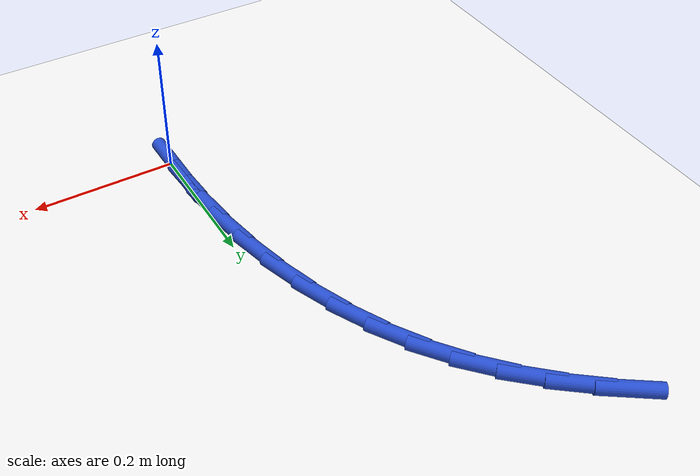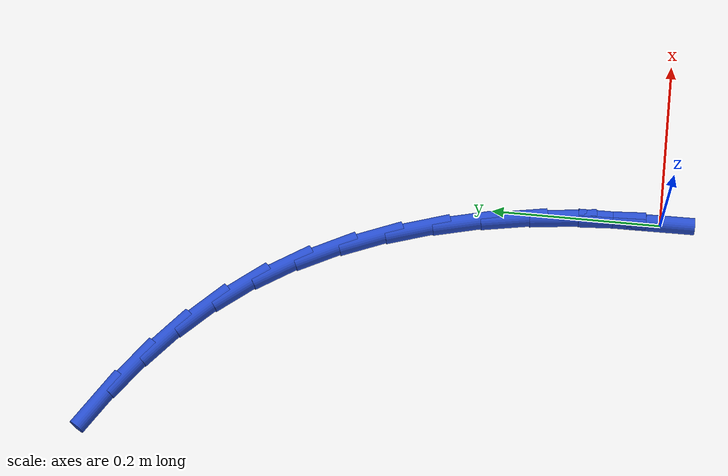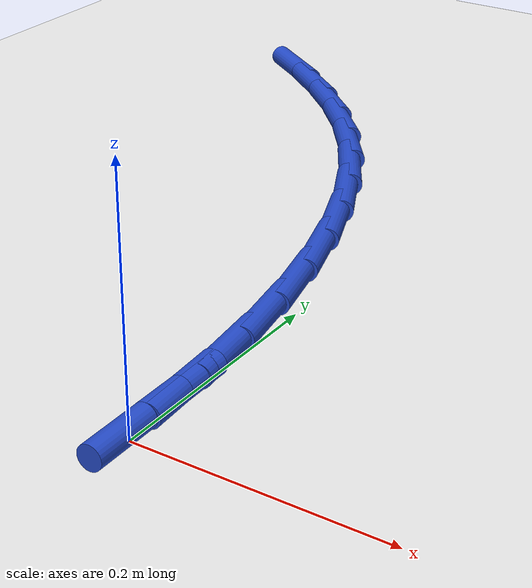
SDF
<sdf version="1.6">
 <world name="default">
  <model name="ground_plane">
   <static>1</static>
   <link name="link">
    <collision name="collision">
     <geometry><plane><normal>0 0 1</normal><size>100 100</size></plane></geometry>
     <surface><friction><ode><mu>100</mu><mu2>50</mu2></ode></friction></surface>
    </collision>
    <visual name="visual">
     <cast_shadows>0</cast_shadows>
     <geometry><plane><normal>0 0 1</normal><size>100 100</size></plane></geometry>
     <material>
      <script><uri>file://media/materials/scripts/gazebo.material</uri><name>Gazebo/WhiteGlow</name></script>
     </material>
    </visual>
   </link>
  </model>
  <model name="line">
   <link name="link_0">
    <pose>-1.1449174941446927e-16 1.249000902703301e-16 0.01 0 1.57 -1.5620902911225623</pose>
    <collision name="collision">
     <geometry><cylinder><radius>0.01</radius><length>0.08</length></cylinder></geometry>
    </collision>
    <visual name="visual">
     <material>
      <script><name>Gazebo/Blue</name><uri>file://media/materials/scripts/gazebo.material</uri></script>
     </material>
     <geometry><cylinder><radius>0.01</radius><length>0.08</length></cylinder></geometry>
    </visual>
   </link>
   <link name="link_1">
    <pose>-0.000503619840601612 0.057845744667998585 0.01 0 1.57 -1.5112052986682893</pose>
    <collision name="collision">
     <geometry><cylinder><radius>0.01</radius><length>0.08</length></cylinder></geometry>
    </collision>
    <visual name="visual">
     <material>
      <script><name>Gazebo/Blue</name><uri>file://media/materials/scripts/gazebo.material</uri></script>
     </material>
     <geometry><cylinder><radius>0.01</radius><length>0.08</length></cylinder></geometry>
    </visual>
   </link>
   <link name="link_2">
    <pose>-0.003962189445238282 0.11581545664779702 0.01 0 1.57 -1.457268982998738</pose>
    <collision name="collision">
     <geometry><cylinder><radius>0.01</radius><length>0.08</length></cylinder></geometry>
    </collision>
    <visual name="visual">
     <material>
      <script><name>Gazebo/Blue</name><uri>file://media/materials/scripts/gazebo.material</uri></script>
     </material>
     <geometry><cylinder><radius>0.01</radius><length>0.08</length></cylinder></geometry>
    </visual>
   </link>
   <link name="link_3">
    <pose>-0.01053325564551478 0.1734474895328082 0.01 0 1.57 -1.3993372580569177</pose>
    <collision name="collision">
     <geometry><cylinder><radius>0.01</radius><length>0.08</length></cylinder></geometry>
    </collision>
    <visual name="visual">
     <material>
      <script><name>Gazebo/Blue</name><uri>file://media/materials/scripts/gazebo.material</uri></script>
     </material>
     <geometry><cylinder><radius>0.01</radius><length>0.08</length></cylinder></geometry>
    </visual>
   </link>
   <link name="link_4">
    <pose>-0.020374365273035756 0.23028019691644463 0.01 0 1.57 -1.3364174624905354</pose>
    <collision name="collision">
     <geometry><cylinder><radius>0.01</radius><length>0.08</length></cylinder></geometry>
    </collision>
    <visual name="visual">
     <material>
      <script><name>Gazebo/Blue</name><uri>file://media/materials/scripts/gazebo.material</uri></script>
     </material>
     <geometry><cylinder><radius>0.01</radius><length>0.08</length></cylinder></geometry>
    </visual>
   </link>
   <link name="link_5">
    <pose>-0.03364306515940589 0.2858519323921193 0.01 0 1.57 -1.2674718500543405</pose>
    <collision name="collision">
     <geometry><cylinder><radius>0.01</radius><length>0.08</length></cylinder></geometry>
    </collision>
    <visual name="visual">
     <material>
      <script><name>Gazebo/Blue</name><uri>file://media/materials/scripts/gazebo.material</uri></script>
     </material>
     <geometry><cylinder><radius>0.01</radius><length>0.08</length></cylinder></geometry>
    </visual>
   </link>
   <link name="link_6">
    <pose>-0.05049690213622983 0.33970104955324476 0.01 0 1.57 -1.1914488150487443</pose>
    <collision name="collision">
     <geometry><cylinder><radius>0.01</radius><length>0.08</length></cylinder></geometry>
    </collision>
    <visual name="visual">
     <material>
      <script><name>Gazebo/Blue</name><uri>file://media/materials/scripts/gazebo.material</uri></script>
     </material>
     <geometry><cylinder><radius>0.01</radius><length>0.08</length></cylinder></geometry>
    </visual>
   </link>
   <link name="link_7">
    <pose>-0.07109342303511224 0.3913659019932338 0.01 0 1.57 -1.1073563162984545</pose>
    <collision name="collision">
     <geometry><cylinder><radius>0.01</radius><length>0.08</length></cylinder></geometry>
    </collision>
    <visual name="visual">
     <material>
      <script><name>Gazebo/Blue</name><uri>file://media/materials/scripts/gazebo.material</uri></script>
     </material>
     <geometry><cylinder><radius>0.01</radius><length>0.08</length></cylinder></geometry>
    </visual>
   </link>
   <link name="link_8">
    <pose>-0.09559017468765776 0.440384843305499 0.01 0 1.57 -1.0143941549607738</pose>
    <collision name="collision">
     <geometry><cylinder><radius>0.01</radius><length>0.08</length></cylinder></geometry>
    </collision>
    <visual name="visual">
     <material>
      <script><name>Gazebo/Blue</name><uri>file://media/materials/scripts/gazebo.material</uri></script>
     </material>
     <geometry><cylinder><radius>0.01</radius><length>0.08</length></cylinder></geometry>
    </visual>
   </link>
   <link name="link_9">
    <pose>-0.12414470392547106 0.486296227083453 0.01 0 1.57 -0.9131613648063072</pose>
    <collision name="collision">
     <geometry><cylinder><radius>0.01</radius><length>0.08</length></cylinder></geometry>
    </collision>
    <visual name="visual">
     <material>
      <script><name>Gazebo/Blue</name><uri>file://media/materials/scripts/gazebo.material</uri></script>
     </material>
     <geometry><cylinder><radius>0.01</radius><length>0.08</length></cylinder></geometry>
    </visual>
   </link>
   <link name="link_10">
    <pose>-0.15688177294271205 0.5286840629052747 0.01 0 1.57 -0.815202252392684</pose>
    <collision name="collision">
     <geometry><cylinder><radius>0.01</radius><length>0.08</length></cylinder></geometry>
    </collision>
    <visual name="visual">
     <material>
      <script><name>Gazebo/Blue</name><uri>file://media/materials/scripts/gazebo.material</uri></script>
     </material>
     <geometry><cylinder><radius>0.01</radius><length>0.08</length></cylinder></geometry>
    </visual>
   </link>
   <link name="link_11">
    <pose>-0.1935705091809635 0.5676276183758078 0.01 0 1.57 -0.728807495843736</pose>
    <collision name="collision">
     <geometry><cylinder><radius>0.01</radius><length>0.08</length></cylinder></geometry>
    </collision>
    <visual name="visual">
     <material>
      <script><name>Gazebo/Blue</name><uri>file://media/materials/scripts/gazebo.material</uri></script>
     </material>
     <geometry><cylinder><radius>0.01</radius><length>0.08</length></cylinder></geometry>
    </visual>
   </link>
   <link name="link_12">
    <pose>-0.2337621477880425 0.6035095985639077 0.01 0 1.57 -0.6548804986234346</pose>
    <collision name="collision">
     <geometry><cylinder><radius>0.01</radius><length>0.08</length></cylinder></geometry>
    </collision>
    <visual name="visual">
     <material>
      <script><name>Gazebo/Blue</name><uri>file://media/materials/scripts/gazebo.material</uri></script>
     </material>
     <geometry><cylinder><radius>0.01</radius><length>0.08</length></cylinder></geometry>
    </visual>
   </link>
   <link name="link_13">
    <pose>-0.2770047777021678 0.6367170899593833 0.01 0 1.57 -0.5934039268485806</pose>
    <collision name="collision">
     <geometry><cylinder><radius>0.01</radius><length>0.08</length></cylinder></geometry>
    </collision>
    <visual name="visual">
     <material>
      <script><name>Gazebo/Blue</name><uri>file://media/materials/scripts/gazebo.material</uri></script>
     </material>
     <geometry><cylinder><radius>0.01</radius><length>0.08</length></cylinder></geometry>
    </visual>
   </link>
   <link name="link_121">
    <pose>-0.000472345112286731 0.057908618899565986 0.01 0 1.57 -1.5626397752093002</pose>
    <collision name="collision">
     <geometry><cylinder><radius>0.01</radius><length>0.08</length></cylinder></geometry>
    </collision>
    <visual name="visual">
     <material>
      <script><name>Gazebo/Blue</name><uri>file://media/materials/scripts/gazebo.material</uri></script>
     </material>
     <geometry><cylinder><radius>0.01</radius><length>0.08</length></cylinder></geometry>
    </visual>
   </link>
  </model>
 </world>
</sdf>
